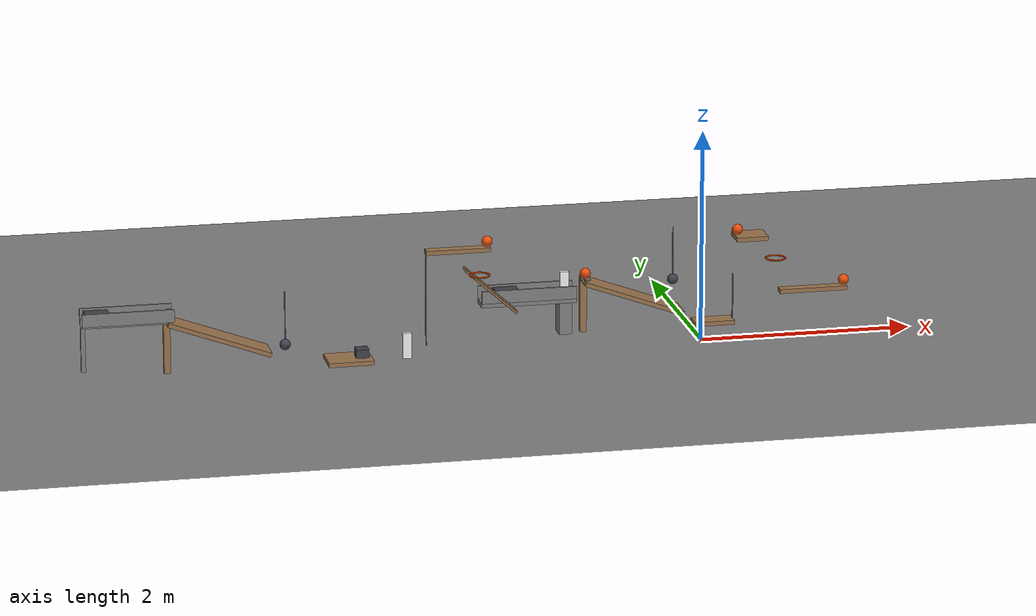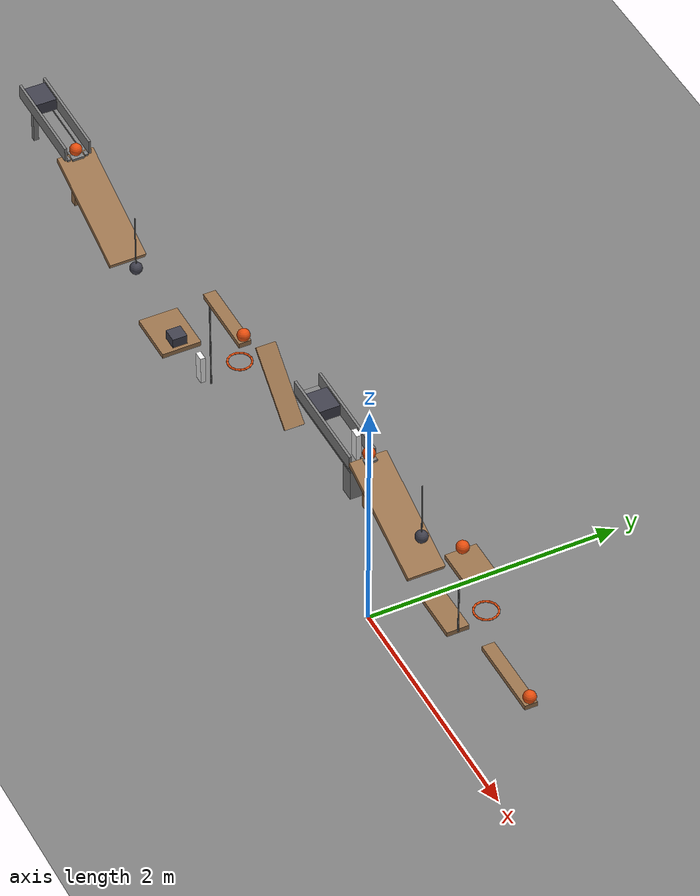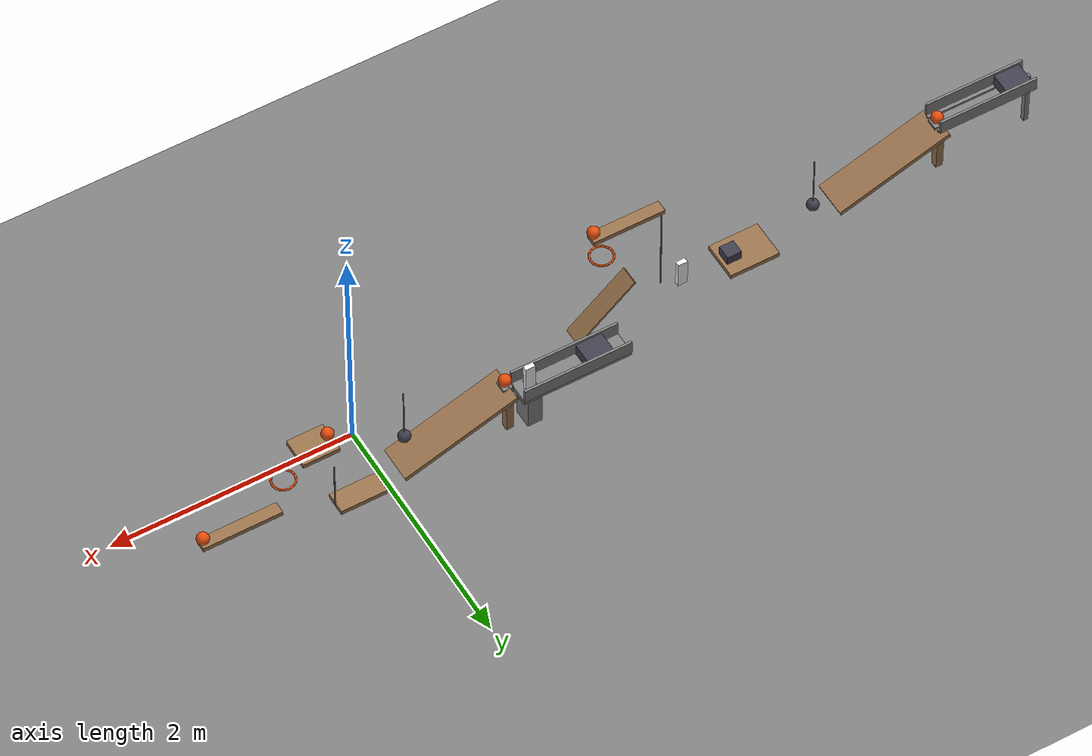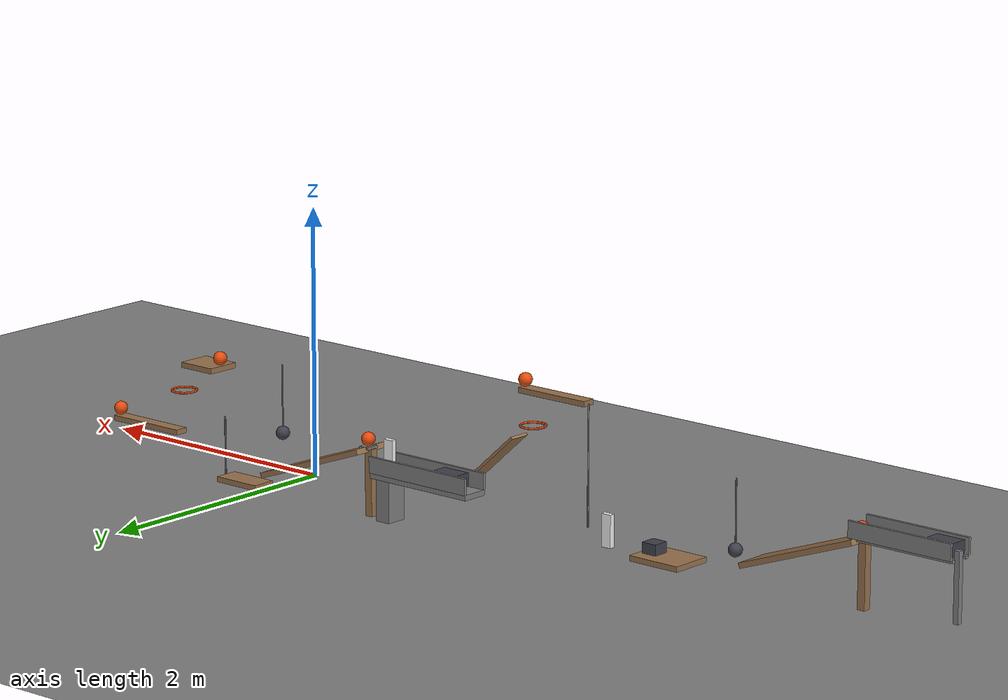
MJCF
<mujoco model="passive_chain_approximation">
  <compiler angle="radian"/>
  <option timestep="0.002"/>
  <worldbody>
    <geom name="floor" type="plane" size="12 12 0.1" friction="0.68 0 0"/>
    <body name="ramp1">
      <geom name="ramp1_deck" type="box" pos="-4.53015 0 0.32101" size="0.5 0.15 0.02" euler="0 0.349066 0" friction="0.68 0 0" solref="0.01 1" rgba="0.6 0.45 0.3 1"/>
      <geom name="ramp1_leg" type="box" pos="-5 0 0.24601" size="0.03 0.03 0.24601" friction="0.68 0 0" solref="0.01 1" rgba="0.6 0.45 0.3 1"/>
    </body>
    <body name="cart1 left track">
      <geom name="cart1 left track" type="box" pos="-5.36 0.075 0.497798" size="0.42 0.015 0.01" friction="0 0 0" solref="0.01 1"/>
    </body>
    <body name="cart1 right track">
      <geom name="cart1 right track" type="box" pos="-5.36 -0.075 0.497798" size="0.42 0.015 0.01" friction="0 0 0" solref="0.01 1"/>
    </body>
    <body name="cart1 left guide">
      <geom name="cart1 left guide" type="box" pos="-5.36 0.1 0.567798" size="0.42 0.01 0.06" friction="0 0 0" solref="0.01 1"/>
    </body>
    <body name="cart1 right guide">
      <geom name="cart1 right guide" type="box" pos="-5.36 -0.1 0.567798" size="0.42 0.01 0.06" friction="0 0 0" solref="0.01 1"/>
    </body>
    <body name="ball1 starting ledge">
      <geom name="ball1 starting ledge" type="box" pos="-4.98 0 0.497798" size="0.05 0.05 0.01" friction="0.68 0 0" solref="0.01 1"/>
    </body>
    <body name="ball1" pos="-4.97606 0 0.557798">
      <freejoint/>
      <geom name="ball1" type="sphere" pos="0 0 0" size="0.05" mass="0.2" condim="6" friction="0.68 0 0" solref="0.01 1" rgba="0.9 0.3 0.05 1"/>
    </body>
    <body name="cart1" pos="-5.63606 0 0.557798">
      <freejoint/>
      <geom name="cart1" type="box" pos="0 0 0" size="0.11 0.09 0.05" mass="0.5" friction="0 0 0" solref="0.01 1" rgba="0.25 0.25 0.3 1"/>
    </body>
    <body name="cart1 spring pusher" pos="-5.76606 0 0.057798">
      <joint name="cart1_spring_hinge" type="hinge" pos="0 0 0" axis="0 1 0" limited="true" range="0 0.4" stiffness="4.5" springref="0.4" damping="0.04"/>
      <geom name="cart1 spring pusher" type="box" pos="0 0 0.25" size="0.02 0.02 0.25" mass="0.02" friction="0.68 0 0" solref="0.01 1"/>
    </body>
    <body name="pendulum1" pos="-3.91031 0 0.7">
      <joint name="pendulum1_hinge" type="hinge" pos="0 0 0" axis="0 1 0" limited="true" range="-0.698132 0" damping="0.04"/>
      <geom name="pendulum1" type="sphere" pos="0 0 -0.5" size="0.05" mass="0.3" friction="0.68 0 0" solref="0.01 1" rgba="0.25 0.25 0.3 1"/>
      <geom name="pendulum1 rod" type="capsule" size="0.005" fromto="0 0 0 0 0 -0.45" mass="0.05" friction="0.68 0 0" solref="0.01 1"/>
    </body>
    <body name="door1" pos="-3.53031 0 0.02">
      <joint name="door1_hinge" type="hinge" pos="0 0 0" axis="0 1 0" limited="true" range="-1.5708 -0.349066" damping="0.04"/>
      <geom name="door1" type="box" pos="0.21 0 0" size="0.21 0.16 0.02" mass="0.45" friction="0.68 0 0" solref="0.01 1" rgba="0.6 0.45 0.3 1"/>
    </body>
    <body name="block1" pos="-3.20031 0 0.06">
      <freejoint/>
      <geom name="block1" type="box" pos="0 0 0" size="0.06 0.06 0.06" mass="0.35" friction="0.68 0 0" solref="0.01 1" rgba="0.25 0.25 0.3 1"/>
    </body>
    <body name="domino1" pos="-2.78031 0 0.12">
      <freejoint/>
      <geom name="domino1" type="box" pos="0 0 0" size="0.04 0.02 0.12" mass="0.25" friction="0.68 0 0" solref="0.01 1" rgba="0.95 0.95 0.95 1"/>
    </body>
    <body name="lever1" pos="-2.30031 0 1">
      <joint name="lever1_hinge" type="hinge" pos="0 0 0" axis="0 1 0" limited="true" range="-0.785398 0" damping="0.04"/>
      <geom name="lever1" type="box" pos="0 0 0" size="0.3 0.05 0.02" mass="0.495" friction="0.68 0 0" solref="0.01 1" rgba="0.6 0.45 0.3 1"/>
      <geom name="lever1 striker" type="capsule" size="0.006" fromto="-0.3 0 -0.01 -0.3 0 -0.89" mass="0.005" friction="0.68 0 0" solref="0.01 1"/>
    </body>
    <body name="ball2" pos="-2.02531 0 1.07">
      <freejoint/>
      <geom name="ball2" type="sphere" pos="0 0 0" size="0.05" mass="0.2" condim="6" friction="0.68 0 0" solref="0.01 1" rgba="0.9 0.3 0.05 1"/>
    </body>
    <body name="ring1">
      <geom name="ring1_00" type="capsule" size="0.008" fromto="-2.00331 0 0.75 -2.01031 0.0352069 0.75" friction="0.68 0 0" solref="0.01 1" rgba="0.9 0.3 0.05 1"/>
      <geom name="ring1_01" type="capsule" size="0.008" fromto="-2.01031 0.0352069 0.75 -2.03025 0.0650538 0.75" friction="0.68 0 0" solref="0.01 1" rgba="0.9 0.3 0.05 1"/>
      <geom name="ring1_02" type="capsule" size="0.008" fromto="-2.03025 0.0650538 0.75 -2.0601 0.0849969 0.75" friction="0.68 0 0" solref="0.01 1" rgba="0.9 0.3 0.05 1"/>
      <geom name="ring1_03" type="capsule" size="0.008" fromto="-2.0601 0.0849969 0.75 -2.09531 0.092 0.75" friction="0.68 0 0" solref="0.01 1" rgba="0.9 0.3 0.05 1"/>
      <geom name="ring1_04" type="capsule" size="0.008" fromto="-2.09531 0.092 0.75 -2.13051 0.0849969 0.75" friction="0.68 0 0" solref="0.01 1" rgba="0.9 0.3 0.05 1"/>
      <geom name="ring1_05" type="capsule" size="0.008" fromto="-2.13051 0.0849969 0.75 -2.16036 0.0650538 0.75" friction="0.68 0 0" solref="0.01 1" rgba="0.9 0.3 0.05 1"/>
      <geom name="ring1_06" type="capsule" size="0.008" fromto="-2.16036 0.0650538 0.75 -2.1803 0.0352069 0.75" friction="0.68 0 0" solref="0.01 1" rgba="0.9 0.3 0.05 1"/>
      <geom name="ring1_07" type="capsule" size="0.008" fromto="-2.1803 0.0352069 0.75 -2.18731 1.12668e-17 0.75" friction="0.68 0 0" solref="0.01 1" rgba="0.9 0.3 0.05 1"/>
      <geom name="ring1_08" type="capsule" size="0.008" fromto="-2.18731 1.12668e-17 0.75 -2.1803 -0.0352069 0.75" friction="0.68 0 0" solref="0.01 1" rgba="0.9 0.3 0.05 1"/>
      <geom name="ring1_09" type="capsule" size="0.008" fromto="-2.1803 -0.0352069 0.75 -2.16036 -0.0650538 0.75" friction="0.68 0 0" solref="0.01 1" rgba="0.9 0.3 0.05 1"/>
      <geom name="ring1_10" type="capsule" size="0.008" fromto="-2.16036 -0.0650538 0.75 -2.13051 -0.0849969 0.75" friction="0.68 0 0" solref="0.01 1" rgba="0.9 0.3 0.05 1"/>
      <geom name="ring1_11" type="capsule" size="0.008" fromto="-2.13051 -0.0849969 0.75 -2.09531 -0.092 0.75" friction="0.68 0 0" solref="0.01 1" rgba="0.9 0.3 0.05 1"/>
      <geom name="ring1_12" type="capsule" size="0.008" fromto="-2.09531 -0.092 0.75 -2.0601 -0.0849969 0.75" friction="0.68 0 0" solref="0.01 1" rgba="0.9 0.3 0.05 1"/>
      <geom name="ring1_13" type="capsule" size="0.008" fromto="-2.0601 -0.0849969 0.75 -2.03025 -0.0650538 0.75" friction="0.68 0 0" solref="0.01 1" rgba="0.9 0.3 0.05 1"/>
      <geom name="ring1_14" type="capsule" size="0.008" fromto="-2.03025 -0.0650538 0.75 -2.01031 -0.0352069 0.75" friction="0.68 0 0" solref="0.01 1" rgba="0.9 0.3 0.05 1"/>
      <geom name="ring1_15" type="capsule" size="0.008" fromto="-2.01031 -0.0352069 0.75 -2.00331 -2.25335e-17 0.75" friction="0.68 0 0" solref="0.01 1" rgba="0.9 0.3 0.05 1"/>
    </body>
    <body name="transfer chute">
      <geom name="transfer chute" type="box" pos="-1.94531 0.25 0.525" size="0.321286 0.08 0.01" euler="0 0.732815 0" friction="0.68 0 0" solref="0.01 1" rgba="0.6 0.45 0.3 1"/>
    </body>
    <body name="cart2 track">
      <geom name="cart2 track" type="box" pos="-1.54531 0.5 0.33" size="0.45 0.1 0.02" friction="0 0 0" solref="0.01 1"/>
    </body>
    <body name="cart2 left guide">
      <geom name="cart2 left guide" type="box" pos="-1.54531 0.6 0.41" size="0.45 0.01 0.06" friction="0 0 0" solref="0.01 1"/>
    </body>
    <body name="cart2 right guide">
      <geom name="cart2 right guide" type="box" pos="-1.54531 0.4 0.41" size="0.45 0.01 0.06" friction="0 0 0" solref="0.01 1"/>
    </body>
    <body name="cart2" pos="-1.74531 0.5 0.4">
      <freejoint/>
      <geom name="cart2" type="box" pos="0 0 0" size="0.11 0.09 0.05" mass="0.5" friction="0 0 0" solref="0.01 1" rgba="0.25 0.25 0.3 1"/>
    </body>
    <body name="domino2 pedestal">
      <geom name="domino2 pedestal" type="box" pos="-1.19531 0.5 0.175" size="0.06 0.08 0.175" friction="0.68 0 0" solref="0.01 1"/>
    </body>
    <body name="domino2" pos="-1.19531 0.5 0.47">
      <freejoint/>
      <geom name="domino2" type="box" pos="0 0 0" size="0.04 0.02 0.12" mass="0.25" friction="0.68 0 0" solref="0.01 1" rgba="0.95 0.95 0.95 1"/>
    </body>
    <body name="ramp2">
      <geom name="ramp2_deck" type="box" pos="-0.54546 0.5 0.32101" size="0.5 0.15 0.02" euler="0 0.349066 0" friction="0.68 0 0" solref="0.01 1" rgba="0.6 0.45 0.3 1"/>
      <geom name="ramp2_leg" type="box" pos="-1.01531 0.5 0.24601" size="0.03 0.03 0.24601" friction="0.68 0 0" solref="0.01 1" rgba="0.6 0.45 0.3 1"/>
    </body>
    <body name="ball3 starting ledge">
      <geom name="ball3 starting ledge" type="box" pos="-0.991366 0.5 0.497798" size="0.04 0.05 0.01" friction="0.68 0 0" solref="0.01 1"/>
    </body>
    <body name="ball3" pos="-0.991366 0.5 0.557798">
      <freejoint/>
      <geom name="ball3" type="sphere" pos="0 0 0" size="0.05" mass="0.2" condim="6" friction="0.68 0 0" solref="0.01 1" rgba="0.9 0.3 0.05 1"/>
    </body>
    <body name="flap1" pos="0.044386 0.5 0.02">
      <joint name="flap1_hinge" type="hinge" pos="0 0 0" axis="0 1 0" limited="true" range="-1.5708 -0.523599" damping="0.04"/>
      <geom name="flap1" type="box" pos="0.19 0 0" size="0.19 0.09 0.02" mass="0.275" friction="0.68 0 0" solref="0.01 1" rgba="0.6 0.45 0.3 1"/>
      <geom name="flap1 striker" type="capsule" size="0.006" fromto="0.38 0 0 0.38 0 0.45" mass="0.005" friction="0.68 0 0" solref="0.01 1"/>
    </body>
    <body name="pendulum2" pos="-0.155167 0.5 0.953553">
      <joint name="pendulum2_hinge" type="hinge" pos="0 0 0" axis="0 1 0" limited="true" range="-1.44862 -0.785398" damping="0.04"/>
      <geom name="pendulum2" type="sphere" pos="0 0 -0.5" size="0.05" mass="0.3" friction="0.68 0 0" solref="0.01 1" rgba="0.25 0.25 0.3 1"/>
      <geom name="pendulum2 rod" type="capsule" size="0.005" fromto="0 0 0 0 0 -0.45" mass="0.05" friction="0.68 0 0" solref="0.01 1"/>
    </body>
    <body name="shelf1">
      <geom name="shelf1" type="box" pos="0.585806 0.5 0.83" size="0.15 0.125 0.02" friction="0.68 0 0" solref="0.01 1" rgba="0.6 0.45 0.3 1"/>
    </body>
    <body name="ball4" pos="0.465806 0.5 0.9">
      <freejoint/>
      <geom name="ball4" type="sphere" pos="0 0 0" size="0.05" mass="0.2" condim="6" friction="0.68 0 0" solref="0.01 1" rgba="0.9 0.3 0.05 1"/>
    </body>
    <body name="ring2">
      <geom name="ring2_00" type="capsule" size="0.008" fromto="0.927806 0.5 0.6 0.920803 0.535207 0.6" friction="0.68 0 0" solref="0.01 1" rgba="0.9 0.3 0.05 1"/>
      <geom name="ring2_01" type="capsule" size="0.008" fromto="0.920803 0.535207 0.6 0.90086 0.565054 0.6" friction="0.68 0 0" solref="0.01 1" rgba="0.9 0.3 0.05 1"/>
      <geom name="ring2_02" type="capsule" size="0.008" fromto="0.90086 0.565054 0.6 0.871013 0.584997 0.6" friction="0.68 0 0" solref="0.01 1" rgba="0.9 0.3 0.05 1"/>
      <geom name="ring2_03" type="capsule" size="0.008" fromto="0.871013 0.584997 0.6 0.835806 0.592 0.6" friction="0.68 0 0" solref="0.01 1" rgba="0.9 0.3 0.05 1"/>
      <geom name="ring2_04" type="capsule" size="0.008" fromto="0.835806 0.592 0.6 0.800599 0.584997 0.6" friction="0.68 0 0" solref="0.01 1" rgba="0.9 0.3 0.05 1"/>
      <geom name="ring2_05" type="capsule" size="0.008" fromto="0.800599 0.584997 0.6 0.770752 0.565054 0.6" friction="0.68 0 0" solref="0.01 1" rgba="0.9 0.3 0.05 1"/>
      <geom name="ring2_06" type="capsule" size="0.008" fromto="0.770752 0.565054 0.6 0.750809 0.535207 0.6" friction="0.68 0 0" solref="0.01 1" rgba="0.9 0.3 0.05 1"/>
      <geom name="ring2_07" type="capsule" size="0.008" fromto="0.750809 0.535207 0.6 0.743806 0.5 0.6" friction="0.68 0 0" solref="0.01 1" rgba="0.9 0.3 0.05 1"/>
      <geom name="ring2_08" type="capsule" size="0.008" fromto="0.743806 0.5 0.6 0.750809 0.464793 0.6" friction="0.68 0 0" solref="0.01 1" rgba="0.9 0.3 0.05 1"/>
      <geom name="ring2_09" type="capsule" size="0.008" fromto="0.750809 0.464793 0.6 0.770752 0.434946 0.6" friction="0.68 0 0" solref="0.01 1" rgba="0.9 0.3 0.05 1"/>
      <geom name="ring2_10" type="capsule" size="0.008" fromto="0.770752 0.434946 0.6 0.800599 0.415003 0.6" friction="0.68 0 0" solref="0.01 1" rgba="0.9 0.3 0.05 1"/>
      <geom name="ring2_11" type="capsule" size="0.008" fromto="0.800599 0.415003 0.6 0.835806 0.408 0.6" friction="0.68 0 0" solref="0.01 1" rgba="0.9 0.3 0.05 1"/>
      <geom name="ring2_12" type="capsule" size="0.008" fromto="0.835806 0.408 0.6 0.871013 0.415003 0.6" friction="0.68 0 0" solref="0.01 1" rgba="0.9 0.3 0.05 1"/>
      <geom name="ring2_13" type="capsule" size="0.008" fromto="0.871013 0.415003 0.6 0.90086 0.434946 0.6" friction="0.68 0 0" solref="0.01 1" rgba="0.9 0.3 0.05 1"/>
      <geom name="ring2_14" type="capsule" size="0.008" fromto="0.90086 0.434946 0.6 0.920803 0.464793 0.6" friction="0.68 0 0" solref="0.01 1" rgba="0.9 0.3 0.05 1"/>
      <geom name="ring2_15" type="capsule" size="0.008" fromto="0.920803 0.464793 0.6 0.927806 0.5 0.6" friction="0.68 0 0" solref="0.01 1" rgba="0.9 0.3 0.05 1"/>
    </body>
    <body name="seesaw1" pos="1.20081 0.5 0.28">
      <joint name="seesaw1_hinge" type="hinge" pos="0 0 0" axis="0 1 0" limited="true" range="-0.733038 0" damping="0.04"/>
      <geom name="seesaw1" type="box" pos="0 0 0" size="0.325 0.05 0.02" mass="0.55" friction="0.68 0 0" solref="0.01 1" rgba="0.6 0.45 0.3 1"/>
    </body>
    <body name="ball5" pos="1.50081 0.5 0.35">
      <freejoint/>
      <geom name="ball5" type="sphere" pos="0 0 0" size="0.05" mass="0.2" condim="6" friction="0.68 0 0" solref="0.01 1" rgba="0.9 0.3 0.05 1"/>
    </body>
  </worldbody>
  <keyframe>
    <key name="start" qpos="-4.97606 0 0.557798 1 0 0 0 -5.63606 0 0.557798 1 0 0 0 0 0 -1.5708 -3.20031 0 0.06 1 0 0 0 -2.78031 0 0.12 1 0 0 0 0 -2.02531 0 1.07 1 0 0 0 -1.74531 0.5 0.4 1 0 0 0 -1.19531 0.5 0.47 1 0 0 0 -0.991366 0.5 0.557798 1 0 0 0 -1.5708 -0.785398 0.465806 0.5 0.9 1 0 0 0 0 1.50081 0.5 0.35 1 0 0 0" qvel="0 0 0 0 0 0 0 0 0 0 0 0 0 0 0 0 0 0 0 0 0 0 0 0 0 0 0 0 0 0 0 0 0 0 0 0 0 0 0 0 0 0 0 0 0 0 0 0 0 0 0 0 0 0 0 0 0 0 0 0 0 0 0 0 0 0 0"/>
  </keyframe>
</mujoco>
